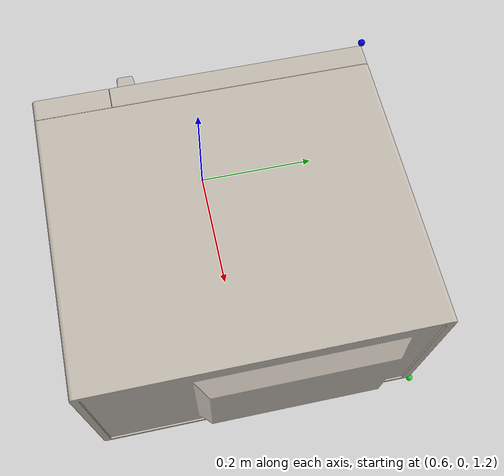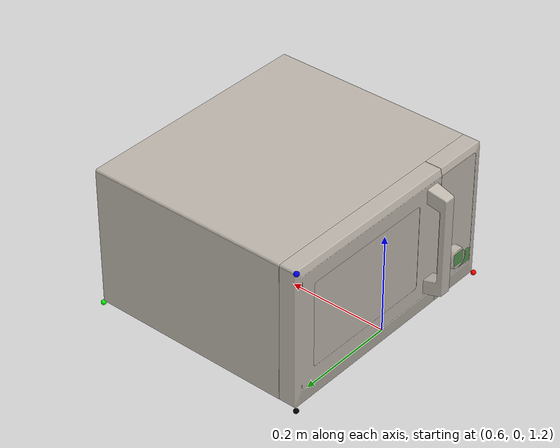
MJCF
<mujoco model="microwave_model">
  <compiler angle="radian"/>
  <asset>
    <texture file="../objects/bigym/microwave/visuals/material_0.png" name="microwave_model" type="2d"/>
    <texture type="2d" name="image7" file="../objects/bigym/microwave/visuals/image7.png"/>
    <texture type="2d" name="image10" file="../objects/bigym/microwave/visuals/image10.png"/>
    <texture type="2d" name="image13" file="../objects/bigym/microwave/visuals/image13.png"/>
    <material name="microwave_model" reflectance="0.5" texrepeat="1 1" texture="microwave_model" texuniform="false"/>
    <material name="TX_Microwave_2_1" texture="image7" specular="0.5" shininess="0.25"/>
    <material name="TX_Microwave_2_2" texture="image10" specular="0.5" shininess="0.25"/>
    <material name="TX_Microwave_2_3" texture="image13" specular="0.5" shininess="0.25"/>
    <mesh file="../objects/bigym/microwave/visuals/model_0.obj" name="microwave_model_0_vis" scale="0.5 0.5 0.5"/>
    <mesh file="../objects/bigym/microwave/visuals/model_1.obj" name="microwave_model_1_vis" scale="0.5 0.5 0.5"/>
    <mesh file="../objects/bigym/microwave/visuals/model_2.obj" name="microwave_model_2_vis" scale="0.5 0.5 0.5"/>
    <mesh file="../objects/bigym/microwave/visuals/door_0.obj" name="door_0_vis" scale="0.5 0.5 0.5"/>
    <mesh file="../objects/bigym/microwave/visuals/door_1.obj" name="door_1_vis" scale="0.5 0.5 0.5"/>
    <mesh file="../objects/bigym/microwave/visuals/door_2.obj" name="door_2_vis" scale="0.5 0.5 0.5"/>
  </asset>
  <default>
    <default class="microwave_visual">
      <geom conaffinity="0" contype="0" group="1" type="mesh"/>
    </default>
    <default class="microwave_collision">
      <geom group="0" rgba="0.5 0 0 0"/>
    </default>
  </default>
  <worldbody>
    <body name="microwave_object" pos="0.79 0.01 1.33" quat="0.707 0 0 -0.707">
      <body>
        <geom solimp="0.998 0.998 0.001" solref="0.001 1" density="100" friction="0.95 0.3 0.1" type="mesh" mesh="microwave_model_0_vis" material="TX_Microwave_2_2" class="microwave_visual"/>
        <geom solimp="0.998 0.998 0.001" solref="0.001 1" density="100" friction="0.95 0.3 0.1" type="mesh" mesh="microwave_model_1_vis" material="TX_Microwave_2_3" class="microwave_visual"/>
        <geom solimp="0.998 0.998 0.001" solref="0.001 1" density="100" friction="0.95 0.3 0.1" type="mesh" mesh="microwave_model_2_vis" material="TX_Microwave_2_1" class="microwave_visual"/>
        <!-- Back -->
        <geom class="microwave_collision" type="box" pos="0 0.206 0" size="0.2465 0.044 0.154"/>
        <!-- Bottom -->
        <geom class="microwave_collision" type="box" pos="0 0 -0.124" size="0.2465 0.1755 0.0275"/>
        <!-- Left -->
        <geom class="microwave_collision" type="box" pos="-0.234 0 0" size="0.0125 0.1755 0.154"/>
        <!-- Right -->
        <geom class="microwave_collision" type="box" pos="0.1715 0 0" size="0.075 0.1755 0.154"/>
        <!-- Top -->
        <geom class="microwave_collision" type="box" pos="0 0 0.1395" size="0.2465 0.1755 0.0145"/>
        <!-- Numpad -->
        <geom class="microwave_collision" type="box" pos="0.1905 -0.194 0.0115" size="0.056 0.0185 0.1425"/>
        <!-- Knob -->
        <geom class="microwave_collision" type="cylinder" pos="0.17375 -0.22 -0.05" size="0.0215 0.0085 0" axisangle="1 0 0 1.57"/>
        <!-- start/stop buttons -->
        <geom class="microwave_collision" type="box" pos="0.21 -0.205 -0.075" size="0.015 0.0108 0.0125" name="start_button" rgba="0.0 0.5 0 0.5"/>
        <geom class="microwave_collision" type="box" pos="0.174 -0.2175 -0.05" size="0.0125 0.0108 0.0125" name="stop_button" rgba="0.0 0.5 0 0.5"/>
        <geom class="microwave_collision" type="cylinder" pos="-0.06 -0.01 -0.1" size="0.11 0.0025" rgba="0 1 0 0.5" name="tray"/>
        <body name="door">
          <joint axis="0 0 1" limited="true" name="microjoint" range="-1.57 0" damping="2" frictionloss="2" armature=".01" pos="-0.2465 -0.1755 0" ref="0"/>
          <geom solimp="0.998 0.998 0.001" solref="0.001 1" density="100" friction="0.95 0.3 0.1" type="mesh" mesh="door_0_vis" material="TX_Microwave_2_3" class="microwave_visual"/>
          <geom solimp="0.998 0.998 0.001" solref="0.001 1" density="100" friction="0.95 0.3 0.1" type="mesh" mesh="door_1_vis" material="TX_Microwave_2_1" class="microwave_visual"/>
          <geom solimp="0.998 0.998 0.001" solref="0.001 1" density="100" friction="0.95 0.3 0.1" type="mesh" mesh="door_2_vis" material="TX_Microwave_2_2" class="microwave_visual"/>
          <!-- Door Main -->
          <geom class="microwave_collision" type="box" pos="-0.056 -0.1945 0.0115" size="0.19 0.0185 0.1425"/>
          <!-- Handle Top -->
          <geom class="microwave_collision" type="box" pos="0.1095 -0.2265 0.113" size="0.0135 0.0235 0.016"/>
          <!-- Handle Top -->
          <geom class="microwave_collision" type="box" pos="0.1095 -0.2265 -0.071" size="0.0135 0.0235 0.016"/>
          <!-- Handle Main -->
          <geom class="microwave_collision" type="box" pos="0.1095 -0.2435 0.0195" size="0.0125 0.0066 0.09" name="door_handle"/>
          <!-- door sites -->
          <site rgba="1 0 0 0" size="0.0025" pos="-0.0375 -0.21 0.005" name="door_p1"/>
          <site rgba="0 1 0 0" size="0.0025" pos="-0.0125 -0.21 0.005" name="door_p2"/>
          <site rgba="0 0 1 0" size="0.0025" pos="-0.0375 -0.21 0.03" name="door_p3"/>
        </body>
        <!-- exterior bounding box points -->
        <site rgba="0 0 0 1" size="0.005" pos="-0.2465 -0.213 -0.131" />
        <site rgba="1 0 0 1" size="0.005" pos="0.2465 -0.213 -0.131" />
        <site rgba="0 1 0 1" size="0.005" pos="-0.2465 0.2325 -0.131" />
        <site rgba="0 0 1 1" size="0.005" pos="-0.2465 -0.213 0.154" />
        <!-- interior bounding box points -->
        <site rgba="0.5 0.5 0.5 1" size="0.005" pos="-0.2215 -0.1755 -0.0965" />
        <site rgba="1 1 0 1" size="0.005" pos="0.0965 -0.1755 -0.0965" />
        <site rgba="0 1 1 1" size="0.005" pos="-0.2215 0.162 -0.0965" />
        <site rgba="1 0 1 1" size="0.005" pos="-0.2215 -0.1755 0.125" />
      </body>
    </body>
  </worldbody>
</mujoco>
